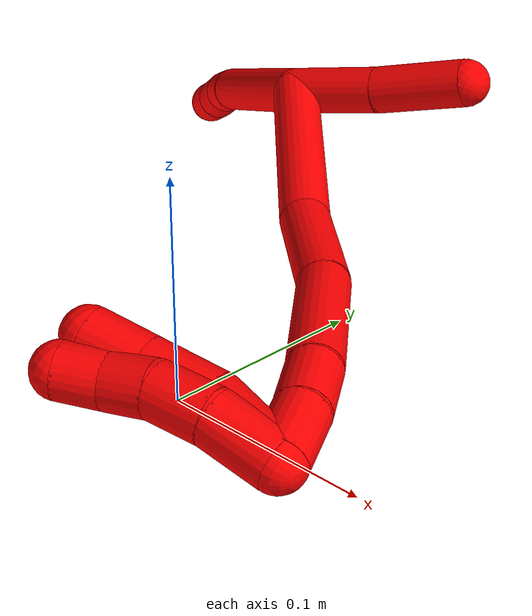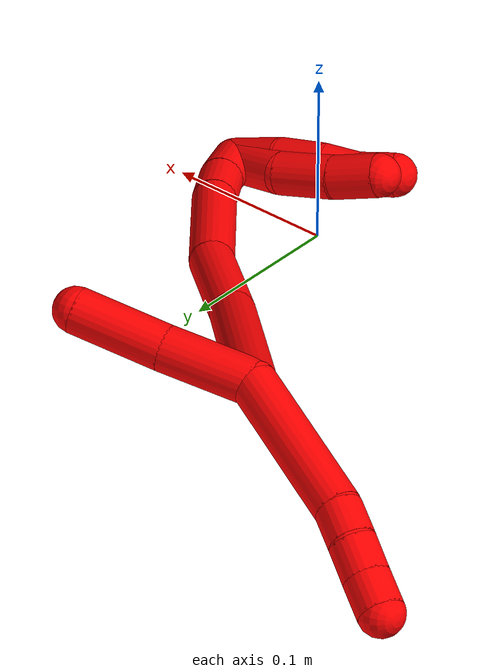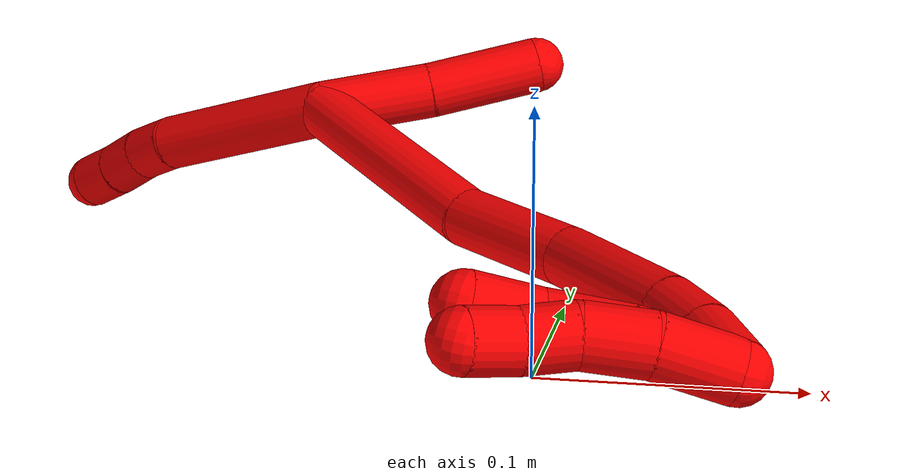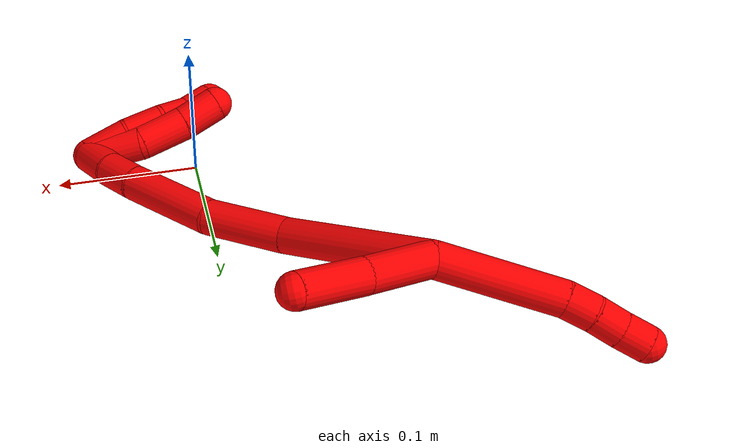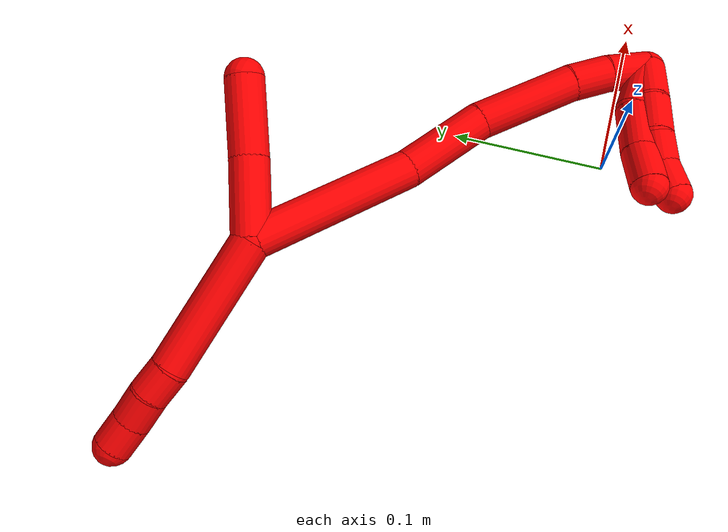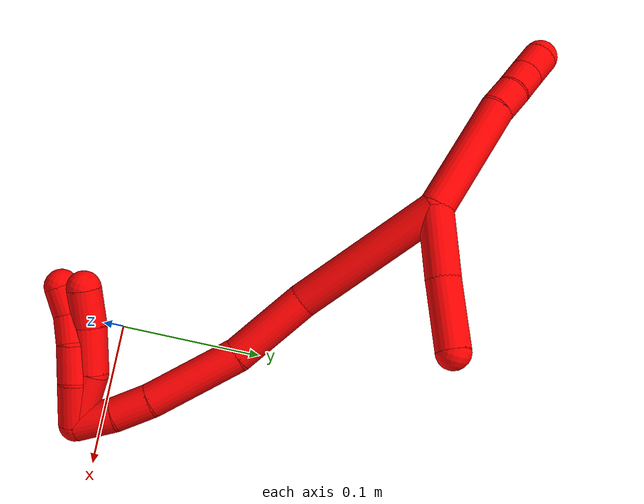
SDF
<sdf version="1.7">
 <world name="default">
  <model name="2">
   <static>0</static>
   <link name="2">
    <collision name="collision-cylinder-e_1_2_8">
     <pose>0.019314 0.010811 0.038597 -0.273113 0.449019 -0.062738</pose>
     <geometry><cylinder><radius>0.0125</radius><length>0.088986</length></cylinder></geometry>
     <surface>
      <friction><ode><mu>1.16</mu><mu2>1.16</mu2><slip1>0</slip1><slip2>0</slip2></ode></friction>
      <contact><ode><kp>1e+06</kp><kd>1</kd><max_vel>0</max_vel><min_depth>0.001</min_depth></ode></contact>
     </surface>
    </collision>
    <visual name="visual-cylinder-e_1_2_8">
     <pose>0.019314 0.010811 0.038597 -0.273113 0.449019 -0.062738</pose>
     <geometry><cylinder><radius>0.0125</radius><length>0.088986</length></cylinder></geometry>
     <material><ambient>1 0 0 1</ambient></material>
    </visual>
    <collision name="collision-cylinder-e_2_8_9">
     <pose>0.044613 0.024092 0.085155 -0.300765 0.622799 -0.097467</pose>
     <geometry><cylinder><radius>0.0125</radius><length>0.020526</length></cylinder></geometry>
     <surface>
      <friction><ode><mu>1.16</mu><mu2>1.16</mu2><slip1>0</slip1><slip2>0</slip2></ode></friction>
      <contact><ode><kp>1e+06</kp><kd>1</kd><max_vel>0</max_vel><min_depth>0.001</min_depth></ode></contact>
     </surface>
    </collision>
    <visual name="visual-cylinder-e_2_8_9">
     <pose>0.044613 0.024092 0.085155 -0.300765 0.622799 -0.097467</pose>
     <geometry><cylinder><radius>0.0125</radius><length>0.020526</length></cylinder></geometry>
     <material><ambient>1 0 0 1</ambient></material>
    </visual>
    <collision name="collision-cylinder-e_3_9_10">
     <pose>0.056652 0.030252 0.100332 -0.472763 0.641446 -0.1597</pose>
     <geometry><cylinder><radius>0.0125</radius><length>0.020228</length></cylinder></geometry>
     <surface>
      <friction><ode><mu>1.16</mu><mu2>1.16</mu2><slip1>0</slip1><slip2>0</slip2></ode></friction>
      <contact><ode><kp>1e+06</kp><kd>1</kd><max_vel>0</max_vel><min_depth>0.001</min_depth></ode></contact>
     </surface>
    </collision>
    <visual name="visual-cylinder-e_3_9_10">
     <pose>0.056652 0.030252 0.100332 -0.472763 0.641446 -0.1597</pose>
     <geometry><cylinder><radius>0.0125</radius><length>0.020228</length></cylinder></geometry>
     <material><ambient>1 0 0 1</ambient></material>
    </visual>
    <collision name="collision-cylinder-e_4_10_6">
     <pose>0.068643 0.036966 0.115176 -0.377426 0.626477 -0.123564</pose>
     <geometry><cylinder><radius>0.0125</radius><length>0.02026</length></cylinder></geometry>
     <surface>
      <friction><ode><mu>1.16</mu><mu2>1.16</mu2><slip1>0</slip1><slip2>0</slip2></ode></friction>
      <contact><ode><kp>1e+06</kp><kd>1</kd><max_vel>0</max_vel><min_depth>0.001</min_depth></ode></contact>
     </surface>
    </collision>
    <visual name="visual-cylinder-e_4_10_6">
     <pose>0.068643 0.036966 0.115176 -0.377426 0.626477 -0.123564</pose>
     <geometry><cylinder><radius>0.0125</radius><length>0.02026</length></cylinder></geometry>
     <material><ambient>1 0 0 1</ambient></material>
    </visual>
    <collision name="collision-cylinder-e_1_2_11">
     <pose>0.003755 -0.011821 -0.021528 2.63943 0.151713 0.576145</pose>
     <geometry><cylinder><radius>0.0125</radius><length>0.049692</length></cylinder></geometry>
     <surface>
      <friction><ode><mu>1.16</mu><mu2>1.16</mu2><slip1>0</slip1><slip2>0</slip2></ode></friction>
      <contact><ode><kp>1e+06</kp><kd>1</kd><max_vel>0</max_vel><min_depth>0.001</min_depth></ode></contact>
     </surface>
    </collision>
    <visual name="visual-cylinder-e_1_2_11">
     <pose>0.003755 -0.011821 -0.021528 2.63943 0.151713 0.576145</pose>
     <geometry><cylinder><radius>0.0125</radius><length>0.049692</length></cylinder></geometry>
     <material><ambient>1 0 0 1</ambient></material>
    </visual>
    <collision name="collision-cylinder-e_2_11_5">
     <pose>0.010899 -0.037035 -0.064078 2.57434 0.135154 0.456294</pose>
     <geometry><cylinder><radius>0.0125</radius><length>0.050308</length></cylinder></geometry>
     <surface>
      <friction><ode><mu>1.16</mu><mu2>1.16</mu2><slip1>0</slip1><slip2>0</slip2></ode></friction>
      <contact><ode><kp>1e+06</kp><kd>1</kd><max_vel>0</max_vel><min_depth>0.001</min_depth></ode></contact>
     </surface>
    </collision>
    <visual name="visual-cylinder-e_2_11_5">
     <pose>0.010899 -0.037035 -0.064078 2.57434 0.135154 0.456294</pose>
     <geometry><cylinder><radius>0.0125</radius><length>0.050308</length></cylinder></geometry>
     <material><ambient>1 0 0 1</ambient></material>
    </visual>
    <collision name="collision-cylinder-e_1_2_12">
     <pose>-0.02452 0.023984 -0.045288 -2.65455 -0.446273 1.48024</pose>
     <geometry><cylinder><radius>0.0125</radius><length>0.113621</length></cylinder></geometry>
     <surface>
      <friction><ode><mu>1.16</mu><mu2>1.16</mu2><slip1>0</slip1><slip2>0</slip2></ode></friction>
      <contact><ode><kp>1e+06</kp><kd>1</kd><max_vel>0</max_vel><min_depth>0.001</min_depth></ode></contact>
     </surface>
    </collision>
    <visual name="visual-cylinder-e_1_2_12">
     <pose>-0.02452 0.023984 -0.045288 -2.65455 -0.446273 1.48024</pose>
     <geometry><cylinder><radius>0.0125</radius><length>0.113621</length></cylinder></geometry>
     <material><ambient>1 0 0 1</ambient></material>
    </visual>
    <collision name="collision-cylinder-e_2_12_13">
     <pose>-0.06343 0.055109 -0.115872 -2.86649 -0.500901 2.14963</pose>
     <geometry><cylinder><radius>0.0125</radius><length>0.059933</length></cylinder></geometry>
     <surface>
      <friction><ode><mu>1.16</mu><mu2>1.16</mu2><slip1>0</slip1><slip2>0</slip2></ode></friction>
      <contact><ode><kp>1e+06</kp><kd>1</kd><max_vel>0</max_vel><min_depth>0.001</min_depth></ode></contact>
     </surface>
    </collision>
    <visual name="visual-cylinder-e_2_12_13">
     <pose>-0.06343 0.055109 -0.115872 -2.86649 -0.500901 2.14963</pose>
     <geometry><cylinder><radius>0.0125</radius><length>0.059933</length></cylinder></geometry>
     <material><ambient>1 0 0 1</ambient></material>
    </visual>
    <collision name="collision-cylinder-e_3_13_14">
     <pose>-0.09938 0.073327 -0.165903 -2.72052 -0.671987 2.04332</pose>
     <geometry><cylinder><radius>0.0125</radius><length>0.069261</length></cylinder></geometry>
     <surface>
      <friction><ode><mu>1.16</mu><mu2>1.16</mu2><slip1>0</slip1><slip2>0</slip2></ode></friction>
      <contact><ode><kp>1e+06</kp><kd>1</kd><max_vel>0</max_vel><min_depth>0.001</min_depth></ode></contact>
     </surface>
    </collision>
    <visual name="visual-cylinder-e_3_13_14">
     <pose>-0.09938 0.073327 -0.165903 -2.72052 -0.671987 2.04332</pose>
     <geometry><cylinder><radius>0.0125</radius><length>0.069261</length></cylinder></geometry>
     <material><ambient>1 0 0 1</ambient></material>
    </visual>
    <collision name="collision-cylinder-e_4_14_15">
     <pose>-0.129897 0.090272 -0.199504 -2.557 -0.700147 1.76298</pose>
     <geometry><cylinder><radius>0.0125</radius><length>0.027806</length></cylinder></geometry>
     <surface>
      <friction><ode><mu>1.16</mu><mu2>1.16</mu2><slip1>0</slip1><slip2>0</slip2></ode></friction>
      <contact><ode><kp>1e+06</kp><kd>1</kd><max_vel>0</max_vel><min_depth>0.001</min_depth></ode></contact>
     </surface>
    </collision>
    <visual name="visual-cylinder-e_4_14_15">
     <pose>-0.129897 0.090272 -0.199504 -2.557 -0.700147 1.76298</pose>
     <geometry><cylinder><radius>0.0125</radius><length>0.027806</length></cylinder></geometry>
     <material><ambient>1 0 0 1</ambient></material>
    </visual>
    <collision name="collision-cylinder-e_5_15_1">
     <pose>-0.148626 0.103803 -0.216218 -2.36805 -0.727734 1.50367</pose>
     <geometry><cylinder><radius>0.0125</radius><length>0.029378</length></cylinder></geometry>
     <surface>
      <friction><ode><mu>1.16</mu><mu2>1.16</mu2><slip1>0</slip1><slip2>0</slip2></ode></friction>
      <contact><ode><kp>1e+06</kp><kd>1</kd><max_vel>0</max_vel><min_depth>0.001</min_depth></ode></contact>
     </surface>
    </collision>
    <visual name="visual-cylinder-e_5_15_1">
     <pose>-0.148626 0.103803 -0.216218 -2.36805 -0.727734 1.50367</pose>
     <geometry><cylinder><radius>0.0125</radius><length>0.029378</length></cylinder></geometry>
     <material><ambient>1 0 0 1</ambient></material>
    </visual>
    <collision name="collision-cylinder-e_1_1_16">
     <pose>-0.158726 0.110716 -0.204625 0.038523 -0.016911 -0.000326</pose>
     <geometry><cylinder><radius>0.0125</radius><length>0.038914</length></cylinder></geometry>
     <surface>
      <friction><ode><mu>1.16</mu><mu2>1.16</mu2><slip1>0</slip1><slip2>0</slip2></ode></friction>
      <contact><ode><kp>1e+06</kp><kd>1</kd><max_vel>0</max_vel><min_depth>0.001</min_depth></ode></contact>
     </surface>
    </collision>
    <visual name="visual-cylinder-e_1_1_16">
     <pose>-0.158726 0.110716 -0.204625 0.038523 -0.016911 -0.000326</pose>
     <geometry><cylinder><radius>0.0125</radius><length>0.038914</length></cylinder></geometry>
     <material><ambient>1 0 0 1</ambient></material>
    </visual>
    <collision name="collision-cylinder-e_2_16_17">
     <pose>-0.16387 0.112588 -0.169229 -0.162765 -0.289394 0.023769</pose>
     <geometry><cylinder><radius>0.0125</radius><length>0.033744</length></cylinder></geometry>
     <surface>
      <friction><ode><mu>1.16</mu><mu2>1.16</mu2><slip1>0</slip1><slip2>0</slip2></ode></friction>
      <contact><ode><kp>1e+06</kp><kd>1</kd><max_vel>0</max_vel><min_depth>0.001</min_depth></ode></contact>
     </surface>
    </collision>
    <visual name="visual-cylinder-e_2_16_17">
     <pose>-0.16387 0.112588 -0.169229 -0.162765 -0.289394 0.023769</pose>
     <geometry><cylinder><radius>0.0125</radius><length>0.033744</length></cylinder></geometry>
     <material><ambient>1 0 0 1</ambient></material>
    </visual>
    <collision name="collision-cylinder-e_3_17_4">
     <pose>-0.174118 0.116966 -0.140851 -0.140644 -0.408738 0.029196</pose>
     <geometry><cylinder><radius>0.0125</radius><length>0.027342</length></cylinder></geometry>
     <surface>
      <friction><ode><mu>1.16</mu><mu2>1.16</mu2><slip1>0</slip1><slip2>0</slip2></ode></friction>
      <contact><ode><kp>1e+06</kp><kd>1</kd><max_vel>0</max_vel><min_depth>0.001</min_depth></ode></contact>
     </surface>
    </collision>
    <visual name="visual-cylinder-e_3_17_4">
     <pose>-0.174118 0.116966 -0.140851 -0.140644 -0.408738 0.029196</pose>
     <geometry><cylinder><radius>0.0125</radius><length>0.027342</length></cylinder></geometry>
     <material><ambient>1 0 0 1</ambient></material>
    </visual>
    <collision name="collision-cylinder-e_1_1_18">
     <pose>-0.16317 0.112005 -0.20934 -0.036599 -0.313256 0.00578</pose>
     <geometry><cylinder><radius>0.0125</radius><length>0.030977</length></cylinder></geometry>
     <surface>
      <friction><ode><mu>1.16</mu><mu2>1.16</mu2><slip1>0</slip1><slip2>0</slip2></ode></friction>
      <contact><ode><kp>1e+06</kp><kd>1</kd><max_vel>0</max_vel><min_depth>0.001</min_depth></ode></contact>
     </surface>
    </collision>
    <visual name="visual-cylinder-e_1_1_18">
     <pose>-0.16317 0.112005 -0.20934 -0.036599 -0.313256 0.00578</pose>
     <geometry><cylinder><radius>0.0125</radius><length>0.030977</length></cylinder></geometry>
     <material><ambient>1 0 0 1</ambient></material>
    </visual>
    <collision name="collision-cylinder-e_2_18_19">
     <pose>-0.171333 0.115162 -0.181849 -0.202298 -0.254508 0.02597</pose>
     <geometry><cylinder><radius>0.0125</radius><length>0.026932</length></cylinder></geometry>
     <surface>
      <friction><ode><mu>1.16</mu><mu2>1.16</mu2><slip1>0</slip1><slip2>0</slip2></ode></friction>
      <contact><ode><kp>1e+06</kp><kd>1</kd><max_vel>0</max_vel><min_depth>0.001</min_depth></ode></contact>
     </surface>
    </collision>
    <visual name="visual-cylinder-e_2_18_19">
     <pose>-0.171333 0.115162 -0.181849 -0.202298 -0.254508 0.02597</pose>
     <geometry><cylinder><radius>0.0125</radius><length>0.026932</length></cylinder></geometry>
     <material><ambient>1 0 0 1</ambient></material>
    </visual>
    <collision name="collision-cylinder-e_3_19_20">
     <pose>-0.177232 0.122216 -0.159805 -0.445914 -0.239306 0.054504</pose>
     <geometry><cylinder><radius>0.0125</radius><length>0.02117</length></cylinder></geometry>
     <surface>
      <friction><ode><mu>1.16</mu><mu2>1.16</mu2><slip1>0</slip1><slip2>0</slip2></ode></friction>
      <contact><ode><kp>1e+06</kp><kd>1</kd><max_vel>0</max_vel><min_depth>0.001</min_depth></ode></contact>
     </surface>
    </collision>
    <visual name="visual-cylinder-e_3_19_20">
     <pose>-0.177232 0.122216 -0.159805 -0.445914 -0.239306 0.054504</pose>
     <geometry><cylinder><radius>0.0125</radius><length>0.02117</length></cylinder></geometry>
     <material><ambient>1 0 0 1</ambient></material>
    </visual>
    <collision name="collision-cylinder-e_4_20_3">
     <pose>-0.184552 0.130486 -0.142067 -0.425678 -0.477876 0.105189</pose>
     <geometry><cylinder><radius>0.0125</radius><length>0.020922</length></cylinder></geometry>
     <surface>
      <friction><ode><mu>1.16</mu><mu2>1.16</mu2><slip1>0</slip1><slip2>0</slip2></ode></friction>
      <contact><ode><kp>1e+06</kp><kd>1</kd><max_vel>0</max_vel><min_depth>0.001</min_depth></ode></contact>
     </surface>
    </collision>
    <visual name="visual-cylinder-e_4_20_3">
     <pose>-0.184552 0.130486 -0.142067 -0.425678 -0.477876 0.105189</pose>
     <geometry><cylinder><radius>0.0125</radius><length>0.020922</length></cylinder></geometry>
     <material><ambient>1 0 0 1</ambient></material>
    </visual>
    <collision name="collision-sphere-3">
     <pose>-0.189363 0.134322 -0.133607 0 -0 0</pose>
     <geometry><sphere><radius>0.0125</radius></sphere></geometry>
     <surface>
      <friction><ode><mu>1.16</mu><mu2>1.16</mu2><slip1>0</slip1><slip2>0</slip2></ode></friction>
      <contact><ode><kp>1e+06</kp><kd>1</kd><max_vel>0</max_vel><min_depth>0.001</min_depth></ode></contact>
     </surface>
    </collision>
    <visual name="visual-sphere-3">
     <pose>-0.189363 0.134322 -0.133607 0 -0 0</pose>
     <geometry><sphere><radius>0.0125</radius></sphere></geometry>
     <material><ambient>1 0 0 1</ambient></material>
    </visual>
    <collision name="collision-sphere-20">
     <pose>-0.179741 0.126651 -0.150527 0 -0 0</pose>
     <geometry><sphere><radius>0.0125</radius></sphere></geometry>
     <surface>
      <friction><ode><mu>1.16</mu><mu2>1.16</mu2><slip1>0</slip1><slip2>0</slip2></ode></friction>
      <contact><ode><kp>1e+06</kp><kd>1</kd><max_vel>0</max_vel><min_depth>0.001</min_depth></ode></contact>
     </surface>
    </collision>
    <visual name="visual-sphere-20">
     <pose>-0.179741 0.126651 -0.150527 0 -0 0</pose>
     <geometry><sphere><radius>0.0125</radius></sphere></geometry>
     <material><ambient>1 0 0 1</ambient></material>
    </visual>
    <collision name="collision-sphere-19">
     <pose>-0.174723 0.117781 -0.169082 0 -0 0</pose>
     <geometry><sphere><radius>0.0125</radius></sphere></geometry>
     <surface>
      <friction><ode><mu>1.16</mu><mu2>1.16</mu2><slip1>0</slip1><slip2>0</slip2></ode></friction>
      <contact><ode><kp>1e+06</kp><kd>1</kd><max_vel>0</max_vel><min_depth>0.001</min_depth></ode></contact>
     </surface>
    </collision>
    <visual name="visual-sphere-19">
     <pose>-0.174723 0.117781 -0.169082 0 -0 0</pose>
     <geometry><sphere><radius>0.0125</radius></sphere></geometry>
     <material><ambient>1 0 0 1</ambient></material>
    </visual>
    <collision name="collision-sphere-11">
     <pose>0.00751 -0.023643 -0.043057 0 -0 0</pose>
     <geometry><sphere><radius>0.0125</radius></sphere></geometry>
     <surface>
      <friction><ode><mu>1.16</mu><mu2>1.16</mu2><slip1>0</slip1><slip2>0</slip2></ode></friction>
      <contact><ode><kp>1e+06</kp><kd>1</kd><max_vel>0</max_vel><min_depth>0.001</min_depth></ode></contact>
     </surface>
    </collision>
    <visual name="visual-sphere-11">
     <pose>0.00751 -0.023643 -0.043057 0 -0 0</pose>
     <geometry><sphere><radius>0.0125</radius></sphere></geometry>
     <material><ambient>1 0 0 1</ambient></material>
    </visual>
    <collision name="collision-sphere-6">
     <pose>0.074582 0.039991 0.122805 0 -0 0</pose>
     <geometry><sphere><radius>0.0125</radius></sphere></geometry>
     <surface>
      <friction><ode><mu>1.16</mu><mu2>1.16</mu2><slip1>0</slip1><slip2>0</slip2></ode></friction>
      <contact><ode><kp>1e+06</kp><kd>1</kd><max_vel>0</max_vel><min_depth>0.001</min_depth></ode></contact>
     </surface>
    </collision>
    <visual name="visual-sphere-6">
     <pose>0.074582 0.039991 0.122805 0 -0 0</pose>
     <geometry><sphere><radius>0.0125</radius></sphere></geometry>
     <material><ambient>1 0 0 1</ambient></material>
    </visual>
    <collision name="collision-sphere-10">
     <pose>0.062704 0.033942 0.107547 0 -0 0</pose>
     <geometry><sphere><radius>0.0125</radius></sphere></geometry>
     <surface>
      <friction><ode><mu>1.16</mu><mu2>1.16</mu2><slip1>0</slip1><slip2>0</slip2></ode></friction>
      <contact><ode><kp>1e+06</kp><kd>1</kd><max_vel>0</max_vel><min_depth>0.001</min_depth></ode></contact>
     </surface>
    </collision>
    <visual name="visual-sphere-10">
     <pose>0.062704 0.033942 0.107547 0 -0 0</pose>
     <geometry><sphere><radius>0.0125</radius></sphere></geometry>
     <material><ambient>1 0 0 1</ambient></material>
    </visual>
    <collision name="collision-sphere-9">
     <pose>0.0506 0.026562 0.093117 0 -0 0</pose>
     <geometry><sphere><radius>0.0125</radius></sphere></geometry>
     <surface>
      <friction><ode><mu>1.16</mu><mu2>1.16</mu2><slip1>0</slip1><slip2>0</slip2></ode></friction>
      <contact><ode><kp>1e+06</kp><kd>1</kd><max_vel>0</max_vel><min_depth>0.001</min_depth></ode></contact>
     </surface>
    </collision>
    <visual name="visual-sphere-9">
     <pose>0.0506 0.026562 0.093117 0 -0 0</pose>
     <geometry><sphere><radius>0.0125</radius></sphere></geometry>
     <material><ambient>1 0 0 1</ambient></material>
    </visual>
    <collision name="collision-sphere-2">
     <geometry><sphere><radius>0.0125</radius></sphere></geometry>
     <surface>
      <friction><ode><mu>1.16</mu><mu2>1.16</mu2><slip1>0</slip1><slip2>0</slip2></ode></friction>
      <contact><ode><kp>1e+06</kp><kd>1</kd><max_vel>0</max_vel><min_depth>0.001</min_depth></ode></contact>
     </surface>
    </collision>
    <visual name="visual-sphere-2">
     <geometry><sphere><radius>0.0125</radius></sphere></geometry>
     <material><ambient>1 0 0 1</ambient></material>
    </visual>
    <collision name="collision-sphere-8">
     <pose>0.038627 0.021623 0.077194 0 -0 0</pose>
     <geometry><sphere><radius>0.0125</radius></sphere></geometry>
     <surface>
      <friction><ode><mu>1.16</mu><mu2>1.16</mu2><slip1>0</slip1><slip2>0</slip2></ode></friction>
      <contact><ode><kp>1e+06</kp><kd>1</kd><max_vel>0</max_vel><min_depth>0.001</min_depth></ode></contact>
     </surface>
    </collision>
    <visual name="visual-sphere-8">
     <pose>0.038627 0.021623 0.077194 0 -0 0</pose>
     <geometry><sphere><radius>0.0125</radius></sphere></geometry>
     <material><ambient>1 0 0 1</ambient></material>
    </visual>
    <collision name="collision-sphere-5">
     <pose>0.014289 -0.050428 -0.085099 0 -0 0</pose>
     <geometry><sphere><radius>0.0125</radius></sphere></geometry>
     <surface>
      <friction><ode><mu>1.16</mu><mu2>1.16</mu2><slip1>0</slip1><slip2>0</slip2></ode></friction>
      <contact><ode><kp>1e+06</kp><kd>1</kd><max_vel>0</max_vel><min_depth>0.001</min_depth></ode></contact>
     </surface>
    </collision>
    <visual name="visual-sphere-5">
     <pose>0.014289 -0.050428 -0.085099 0 -0 0</pose>
     <geometry><sphere><radius>0.0125</radius></sphere></geometry>
     <material><ambient>1 0 0 1</ambient></material>
    </visual>
    <collision name="collision-sphere-12">
     <pose>-0.04904 0.047969 -0.090575 0 -0 0</pose>
     <geometry><sphere><radius>0.0125</radius></sphere></geometry>
     <surface>
      <friction><ode><mu>1.16</mu><mu2>1.16</mu2><slip1>0</slip1><slip2>0</slip2></ode></friction>
      <contact><ode><kp>1e+06</kp><kd>1</kd><max_vel>0</max_vel><min_depth>0.001</min_depth></ode></contact>
     </surface>
    </collision>
    <visual name="visual-sphere-12">
     <pose>-0.04904 0.047969 -0.090575 0 -0 0</pose>
     <geometry><sphere><radius>0.0125</radius></sphere></geometry>
     <material><ambient>1 0 0 1</ambient></material>
    </visual>
    <collision name="collision-sphere-13">
     <pose>-0.077821 0.062249 -0.141169 0 -0 0</pose>
     <geometry><sphere><radius>0.0125</radius></sphere></geometry>
     <surface>
      <friction><ode><mu>1.16</mu><mu2>1.16</mu2><slip1>0</slip1><slip2>0</slip2></ode></friction>
      <contact><ode><kp>1e+06</kp><kd>1</kd><max_vel>0</max_vel><min_depth>0.001</min_depth></ode></contact>
     </surface>
    </collision>
    <visual name="visual-sphere-13">
     <pose>-0.077821 0.062249 -0.141169 0 -0 0</pose>
     <geometry><sphere><radius>0.0125</radius></sphere></geometry>
     <material><ambient>1 0 0 1</ambient></material>
    </visual>
    <collision name="collision-sphere-14">
     <pose>-0.120939 0.084404 -0.190637 0 -0 0</pose>
     <geometry><sphere><radius>0.0125</radius></sphere></geometry>
     <surface>
      <friction><ode><mu>1.16</mu><mu2>1.16</mu2><slip1>0</slip1><slip2>0</slip2></ode></friction>
      <contact><ode><kp>1e+06</kp><kd>1</kd><max_vel>0</max_vel><min_depth>0.001</min_depth></ode></contact>
     </surface>
    </collision>
    <visual name="visual-sphere-14">
     <pose>-0.120939 0.084404 -0.190637 0 -0 0</pose>
     <geometry><sphere><radius>0.0125</radius></sphere></geometry>
     <material><ambient>1 0 0 1</ambient></material>
    </visual>
    <collision name="collision-sphere-15">
     <pose>-0.138855 0.09614 -0.208371 0 -0 0</pose>
     <geometry><sphere><radius>0.0125</radius></sphere></geometry>
     <surface>
      <friction><ode><mu>1.16</mu><mu2>1.16</mu2><slip1>0</slip1><slip2>0</slip2></ode></friction>
      <contact><ode><kp>1e+06</kp><kd>1</kd><max_vel>0</max_vel><min_depth>0.001</min_depth></ode></contact>
     </surface>
    </collision>
    <visual name="visual-sphere-15">
     <pose>-0.138855 0.09614 -0.208371 0 -0 0</pose>
     <geometry><sphere><radius>0.0125</radius></sphere></geometry>
     <material><ambient>1 0 0 1</ambient></material>
    </visual>
    <collision name="collision-sphere-1">
     <pose>-0.158397 0.111466 -0.224065 0 -0 0</pose>
     <geometry><sphere><radius>0.0125</radius></sphere></geometry>
     <surface>
      <friction><ode><mu>1.16</mu><mu2>1.16</mu2><slip1>0</slip1><slip2>0</slip2></ode></friction>
      <contact><ode><kp>1e+06</kp><kd>1</kd><max_vel>0</max_vel><min_depth>0.001</min_depth></ode></contact>
     </surface>
    </collision>
    <visual name="visual-sphere-1">
     <pose>-0.158397 0.111466 -0.224065 0 -0 0</pose>
     <geometry><sphere><radius>0.0125</radius></sphere></geometry>
     <material><ambient>1 0 0 1</ambient></material>
    </visual>
    <collision name="collision-sphere-18">
     <pose>-0.167942 0.112544 -0.194615 0 -0 0</pose>
     <geometry><sphere><radius>0.0125</radius></sphere></geometry>
     <surface>
      <friction><ode><mu>1.16</mu><mu2>1.16</mu2><slip1>0</slip1><slip2>0</slip2></ode></friction>
      <contact><ode><kp>1e+06</kp><kd>1</kd><max_vel>0</max_vel><min_depth>0.001</min_depth></ode></contact>
     </surface>
    </collision>
    <visual name="visual-sphere-18">
     <pose>-0.167942 0.112544 -0.194615 0 -0 0</pose>
     <geometry><sphere><radius>0.0125</radius></sphere></geometry>
     <material><ambient>1 0 0 1</ambient></material>
    </visual>
    <collision name="collision-sphere-16">
     <pose>-0.159055 0.109967 -0.185186 0 -0 0</pose>
     <geometry><sphere><radius>0.0125</radius></sphere></geometry>
     <surface>
      <friction><ode><mu>1.16</mu><mu2>1.16</mu2><slip1>0</slip1><slip2>0</slip2></ode></friction>
      <contact><ode><kp>1e+06</kp><kd>1</kd><max_vel>0</max_vel><min_depth>0.001</min_depth></ode></contact>
     </surface>
    </collision>
    <visual name="visual-sphere-16">
     <pose>-0.159055 0.109967 -0.185186 0 -0 0</pose>
     <geometry><sphere><radius>0.0125</radius></sphere></geometry>
     <material><ambient>1 0 0 1</ambient></material>
    </visual>
    <collision name="collision-sphere-17">
     <pose>-0.168684 0.115208 -0.153272 0 -0 0</pose>
     <geometry><sphere><radius>0.0125</radius></sphere></geometry>
     <surface>
      <friction><ode><mu>1.16</mu><mu2>1.16</mu2><slip1>0</slip1><slip2>0</slip2></ode></friction>
      <contact><ode><kp>1e+06</kp><kd>1</kd><max_vel>0</max_vel><min_depth>0.001</min_depth></ode></contact>
     </surface>
    </collision>
    <visual name="visual-sphere-17">
     <pose>-0.168684 0.115208 -0.153272 0 -0 0</pose>
     <geometry><sphere><radius>0.0125</radius></sphere></geometry>
     <material><ambient>1 0 0 1</ambient></material>
    </visual>
    <collision name="collision-sphere-4">
     <pose>-0.179552 0.118725 -0.12843 0 -0 0</pose>
     <geometry><sphere><radius>0.0125</radius></sphere></geometry>
     <surface>
      <friction><ode><mu>1.16</mu><mu2>1.16</mu2><slip1>0</slip1><slip2>0</slip2></ode></friction>
      <contact><ode><kp>1e+06</kp><kd>1</kd><max_vel>0</max_vel><min_depth>0.001</min_depth></ode></contact>
     </surface>
    </collision>
    <visual name="visual-sphere-4">
     <pose>-0.179552 0.118725 -0.12843 0 -0 0</pose>
     <geometry><sphere><radius>0.0125</radius></sphere></geometry>
     <material><ambient>1 0 0 1</ambient></material>
    </visual>
    <inertial>
     <pose>-0.065722 0.053636 -0.08732 0 -0 0</pose>
     <mass>0.75</mass>
     <inertia>
      <ixx>0.000246</ixx>
      <ixy>0</ixy>
      <ixz>0</ixz>
      <iyy>0.000294</iyy>
      <iyz>0</iyz>
      <izz>-1.8e-05</izz>
     </inertia>
    </inertial>
   </link>
   <pose>-0.123497 0.198337 0.061333 -1.35074 0.558081 1.58824</pose>
  </model>
 </world>
</sdf>
